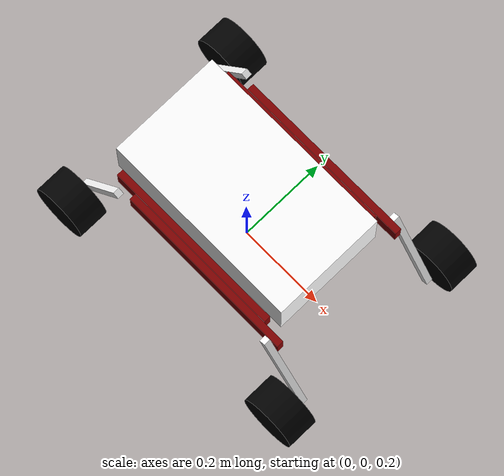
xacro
<?xml version="1.0"?>
<robot xmlns:xacro="http://www.ros.org/wiki/xacro" >

    <xacro:include filename="inertial_macros.xacro"/>

    <xacro:property name="chassis_length" value="0.45"/>
    <xacro:property name="chassis_width" value="0.255"/>
    <xacro:property name="chassis_height" value="0.12"/>

    <xacro:property name="arm_length" value="0.4064"/>
    <xacro:property name="arm_width" value="0.015"/>
    <xacro:property name="arm_height" value="0.045"/>
    <xacro:property name="arm_offset" value="0.1425"/>
    <xacro:property name="arm_outer_offset" value="0.052"/>

    <xacro:property name="leg_length" value="0.225"/>
    <xacro:property name="leg_width" value="0.015"/>
    <xacro:property name="leg_height" value="0.015"/>

    <xacro:property name="wheel_radius" value="0.0635"/>
    <xacro:property name="wheel_thickness" value="0.06985"/>
    <xacro:property name="wheel_mass" value="0.02"/>

   <xacro:property name="wheel_offset_y" value="0.2667"/>
   <xacro:property name="wheel_offset_x" value="0.27305"/>

   <xacro:property name="rotation_limit" value="${pi/6}"/>

    <material name="white">
        <color rgba="1 1 1 1" />
    </material>

    <material name="black">
        <color rgba="0 0 0 1"/>
    </material>

    <material name="red">
        <color rgba=".5 0 0 1"/>
    </material>

    <!-- BASE LINK -->

    <link name="base_link">

    </link>

    <!-- BASE FOOTPRINT-->

    <joint name="base_footprint_joint" type="fixed">
        <parent link="base_link"/>
        <child link="base_footprint"/>
        <origin xyz="0 0 0" rpy="0 0 0"/>
    </joint>

    <link name="base_footprint">
    </link>

    <!-- CHASSIS LINK -->

    <joint name="chassis_joint" type="fixed">
        <parent link="base_link"/>
        <child link="chassis"/>
        <origin xyz="0 0 .5"/>
    </joint>

    <link name="chassis">
        <visual>
            <origin xyz="0 0 0"/>
            <geometry>
                <box size="${chassis_length} ${chassis_width} ${chassis_height}"/>
            </geometry>
            <material name="white"/>
        </visual>
        <collision>
            <origin xyz="0 0 0"/>
            <geometry>
                <box size="${chassis_length} ${chassis_width} ${chassis_height}"/>
            </geometry>
        </collision>
        <xacro:inertial_box mass="0.5" x="${chassis_length}" y="${chassis_width}" z="${chassis_height}">
            <origin xyz="0 0 0" rpy="0 0 0"/>
        </xacro:inertial_box>
    </link>

    <!-- INNER RIGHT ARM-->

    <joint name="right_arm_inner_joint" type="revolute">
        <parent link="chassis"/>
        <child link="right_arm_inner"/>
        <origin xyz="0 -${arm_offset} -0.038"/>
        <axis xyz="0 1 0"/>
        <limit effort="100" velocity="5.0" lower="-${rotation_limit}" upper="${rotation_limit}" />
        <dynamics damping="1" friction="0.25"/>
    </joint>

    <link name="right_arm_inner">
        <visual>
            <origin xyz="0 0 0"/>
            <geometry>
                <box size="${arm_length} ${arm_width} ${arm_height}"/>
            </geometry>
            <material name="red"/>
        </visual>
        <collision>
            <origin xyz="0 0 0"/>
            <geometry>
                <box size="${arm_length} ${arm_width} ${arm_height}"/>
            </geometry>
        </collision>
        <xacro:inertial_box mass="0.2" x="${arm_length}" y="${arm_width}" z="${arm_height}">
            <origin xyz="${arm_length/2} 0 ${arm_height/2}" rpy="0 0 0"/>
        </xacro:inertial_box>
    </link>

    <!-- INNER LEFT ARM-->

    <joint name="left_arm_inner_joint" type="revolute">
        <parent link="chassis"/>
        <child link="left_arm_inner"/>
        <origin xyz="0 ${arm_offset} -0.038"/>
        <axis xyz="0 1 0"/>
        <limit effort="100" velocity="5.0" lower="-${rotation_limit}" upper="${rotation_limit}"/>
        <mimic joint="right_arm_inner_joint" multiplier="-1.0"/>
    </joint>

    <link name="left_arm_inner">
        <visual>
            <origin xyz="0 0 0"/>
            <geometry>
                <box size="${arm_length} ${arm_width} ${arm_height}"/>
            </geometry>
            <material name="red"/>
        </visual>
        <collision>
            <origin xyz="0 0 0"/>
            <geometry>
                <box size="${arm_length} ${arm_width} ${arm_height}"/>
            </geometry>
        </collision>
        <xacro:inertial_box mass="0.2" x="${arm_length}" y="${arm_width}" z="${arm_height}">
            <origin xyz="${arm_length/2} 0 ${arm_height/2}" rpy="0 0 0"/>
        </xacro:inertial_box>
    </link>

    <!-- OUTER RIGHT ARM-->

    <joint name="right_arm_outer_joint" type="prismatic">
        <parent link="right_arm_inner"/>
        <child link="right_arm_outer"/>
        <origin xyz="${arm_outer_offset} -${arm_width + .001} 0"/>
        <axis xyz="1 0 0"/>
        <limit effort="100" velocity="0.01" upper="0"/>
        <dynamics damping="3" friction="0.025"/>
    </joint>

    <link name="right_arm_outer">
        <visual>
            <origin xyz="0 0 0"/>
            <geometry>
                <box size="${arm_length} ${arm_width} ${arm_height}"/>
            </geometry>
            <material name="red"/>
        </visual>
        <collision>
            <origin xyz="0 0 0"/>
            <geometry>
                <box size="${arm_length} ${arm_width} ${arm_height}"/>
            </geometry>
        </collision>
        <xacro:inertial_box mass="0.2" x="${arm_length}" y="${arm_width}" z="${arm_height}">
            <origin xyz="${arm_length/2} 0 ${arm_height/2}" rpy="0 0 0"/>
        </xacro:inertial_box>
    </link>

    <!-- OUTER LEFT ARM-->

    <joint name="left_arm_outer_joint" type="prismatic">
        <parent link="left_arm_inner"/>
        <child link="left_arm_outer"/>
        <origin xyz="${arm_outer_offset} ${arm_width + .001} 0"/>
        <axis xyz="1 0 0"/>
        <limit effort="100" velocity="0.01" upper="0"/>
        <dynamics damping="3" friction="0.025"/>
    </joint>

    <link name="left_arm_outer">
        <visual>
            <origin xyz="0 0 0"/>
            <geometry>
                <box size="${arm_length} ${arm_width} ${arm_height}"/>
            </geometry>
            <material name="red"/>
        </visual>
        <collision>
            <origin xyz="0 0 0"/>
            <geometry>
                <box size="${arm_length} ${arm_width} ${arm_height}"/>
            </geometry>
        </collision>
        <xacro:inertial_box mass="0.2" x="${arm_length}" y="${arm_width}" z="${arm_height}">
            <origin xyz="${arm_length/2} 0 ${arm_height/2}" rpy="0 0 0"/>
        </xacro:inertial_box>
    </link>

    <!-- FRONT LEFT LEG-->

    <joint name="FL_leg_joint" type="fixed">
        <parent link="left_arm_outer"/>
        <child link="FL_leg"/>
        <origin xyz=".27 ${leg_width} -0.16" rpy="0 ${1.0821 + pi} 0"/>
    </joint>

    <link name="FL_leg">
        <visual>
            <origin xyz="${leg_length/2 -.025} 0 0" />
            <geometry>
                <box size="${leg_length} ${leg_width} ${leg_height}"/>
            </geometry>
            <material name="white"/>
        </visual>
        <collision>
            <origin xyz="${leg_length/2 -.025} 0 0" />
            <geometry>
                <box size="${leg_length} ${leg_width} ${leg_height}"/>
            </geometry>
        </collision>
        <xacro:inertial_box mass="0.1" x="${leg_length}" y="${leg_width}" z="${leg_height}">
            <origin xyz="${leg_length/2 -.025} 0 0" rpy="0 0 0"/>
        </xacro:inertial_box>
    </link>

    <!-- FRONT LEFT WHEEL LINK -->

    <joint name="FL_wheel_joint" type="continuous">
        <parent link="FL_leg"/>
        <child link="FL_wheel"/>
        <origin xyz="0 ${leg_width + wheel_thickness/2} 0" rpy="-${pi/2} 0 0" />
        <axis xyz="0 0 1"/>
    </joint>

    <link name="FL_wheel">
        <visual>
            <geometry>
                <cylinder radius="${wheel_radius}" length="${wheel_thickness}"/>
            </geometry>
            <material name="black"/>
        </visual>
        <collision>
            <geometry>
                <sphere radius="${wheel_radius}"/>
            </geometry>
        </collision>
        <xacro:inertial_cylinder mass="${wheel_mass}" length="${wheel_thickness}" radius="${wheel_radius}">
            <origin xyz="0 0 0" rpy="0 0 0"/>
        </xacro:inertial_cylinder>
    </link>

    <!-- FRONT RIGHT LEG -->

    <joint name="FR_leg_joint" type="fixed">
        <parent link="right_arm_outer"/>
        <child link="FR_leg"/>
        <origin xyz=".27 -${leg_width} -0.16" rpy="0 ${1.0821 + pi} 0"/>
    </joint>

    <link name="FR_leg">
        <visual>
            <origin xyz="${leg_length/2 -.025} 0 0" />
            <geometry>
                <box size="${leg_length} ${leg_width} ${leg_height}"/>
            </geometry>
            <material name="white"/>
        </visual>
        <collision>
            <origin xyz="${leg_length/2 -.025} 0 0"/>
            <geometry>
                <box size="${leg_length} ${leg_width} ${leg_height}"/>
            </geometry>
        </collision>
        <xacro:inertial_box mass="0.1" x="${leg_length}" y="${leg_width}" z="${leg_height}">
            <origin xyz="${leg_length/2 -.025} 0 0" rpy="0 0 0"/>
        </xacro:inertial_box>
    </link>

    <!-- FRONT RIGHT WHEEL LINK -->

    <joint name="FR_wheel_joint" type="continuous">
        <parent link="FR_leg"/>
        <child link="FR_wheel"/>
        <origin xyz="0 -${leg_width + wheel_thickness/2} 0" rpy="-${pi/2} 0 0" />
        <axis xyz="0 0 1"/>
    </joint>

    <link name="FR_wheel">
        <visual>
            <geometry>
                <cylinder radius="${wheel_radius}" length="${wheel_thickness}"/>
            </geometry>
            <material name="black"/>
        </visual>
        <collision>
            <geometry>
                <sphere radius="${wheel_radius}"/>
            </geometry>
        </collision>
        <xacro:inertial_cylinder mass="${wheel_mass}" length="${wheel_thickness}" radius="${wheel_radius}">
            <origin xyz="0 0 0" rpy="0 0 0"/>
        </xacro:inertial_cylinder>
    </link>

    <!-- BACK LEFT LEG-->

    <joint name="BL_leg_joint" type="fixed">
        <parent link="left_arm_inner"/>
        <child link="BL_leg"/>
        <origin xyz="-.27 ${leg_width + arm_width} -0.16" rpy="0 ${2.059489 + pi} 0"/>
    </joint>

    <link name="BL_leg">
        <visual>
            <origin xyz="${leg_length/2 -.025} 0 0" />
            <geometry>
                <box size="${leg_length} ${leg_width} ${leg_height}"/>
            </geometry>
            <material name="white"/>
        </visual>
        <collision>
            <origin xyz="${leg_length/2 -.025} 0 0" />
            <geometry>
                <box size="${leg_length} ${leg_width} ${leg_height}"/>
            </geometry>
        </collision>
        <xacro:inertial_box mass="0.1" x="${leg_length}" y="${leg_width}" z="${leg_height}">
            <origin xyz="${leg_length/2 -.025} 0 0" />
        </xacro:inertial_box>
    </link>

    <!-- BACK LEFT WHEEL LINK -->

    <joint name="BL_wheel_joint" type="continuous">
        <parent link="BL_leg"/>
        <child link="BL_wheel"/>
        <origin xyz="0 ${leg_width + wheel_thickness/2} 0" rpy="-${pi/2} 0 0" />
        <axis xyz="0 0 1"/>
    </joint>

    <link name="BL_wheel">
        <visual>
            <geometry>
                <cylinder radius="${wheel_radius}" length="${wheel_thickness}"/>
            </geometry>
            <material name="black"/>
        </visual>
        <collision>
            <geometry>
                <sphere radius="${wheel_radius}"/>
            </geometry>
        </collision>
        <xacro:inertial_cylinder mass="${wheel_mass}" length="${wheel_thickness}" radius="${wheel_radius}">
            <origin xyz="0 0 0" rpy="0 0 0"/>
        </xacro:inertial_cylinder>
    </link>

    <!-- BACK RIGHT LEG-->

    <joint name="BR_leg_joint" type="fixed">
        <parent link="right_arm_inner"/>
        <child link="BR_leg"/>
        <origin xyz="-.27 -${leg_width + arm_width} -0.16" rpy="0 ${2.059489 + pi} 0"/>
    </joint>

    <link name="BR_leg">
        <visual>
            <origin xyz="${leg_length/2 -.025} 0 0" />
            <geometry>
                <box size="${leg_length} ${leg_width} ${leg_height}"/>
            </geometry>
            <material name="white"/>
        </visual>
        <collision>
            <origin xyz="${leg_length/2 -.025} 0 0" />
            <geometry>
                <box size="${leg_length} ${leg_width} ${leg_height}"/>
            </geometry>
        </collision>
        <xacro:inertial_box mass="0.1" x="${leg_length}" y="${leg_width}" z="${leg_height}">
            <origin xyz="${leg_length/2 -.025} 0 0" />
        </xacro:inertial_box>
    </link>

    <!-- BACK RIGHT WHEEL LINK -->

    <joint name="BR_wheel_joint" type="continuous">
        <parent link="BR_leg"/>
        <child link="BR_wheel"/>
        <origin xyz="0 -${leg_width + wheel_thickness/2} 0" rpy="-${pi/2} 0 0" />
        <axis xyz="0 0 1"/>
    </joint>

    <link name="BR_wheel">
        <visual>
            <geometry>
                <cylinder radius="${wheel_radius}" length="${wheel_thickness}"/>
            </geometry>
            <material name="black"/>
        </visual>
        <collision>
            <geometry>
                <sphere radius="${wheel_radius}"/>
            </geometry>
        </collision>
        <xacro:inertial_cylinder mass="${wheel_mass}" length="${wheel_thickness}" radius="${wheel_radius}">
            <origin xyz="0 0 0" rpy="0 0 0"/>
        </xacro:inertial_cylinder>
    </link>

    <gazebo>
        <plugin name="joint_states" filename="libgazebo_ros_joint_state_publisher.so">
            <ros>
                <remapping>~/out:=joint_states</remapping>
            </ros>
            <update_rate>30</update_rate>
            <joint_name>right_arm_inner_joint</joint_name>
            <joint_name>right_arm_outer_joint</joint_name>
            <joint_name>left_arm_inner_joint</joint_name>
            <joint_name>left_arm_outer_joint</joint_name>

            <joint_name>BL_wheel_joint</joint_name>
            <joint_name>BR_wheel_joint</joint_name>
            <joint_name>FL_wheel_joint</joint_name>
            <joint_name>FR_wheel_joint</joint_name>

        </plugin>

    </gazebo>

    <!-- Gazebo Colors-->
    <gazebo reference="FR_wheel">
        <material>Gazebo/Black</material>
        <mu1 value="0.001"/>
        <mu2 value="0.001"/>
    </gazebo>
    <gazebo reference="BR_wheel">
        <material>Gazebo/Black</material>
    </gazebo>
    <gazebo reference="FL_wheel">
        <material>Gazebo/Black</material>
        <mu1 value="0.001"/>
        <mu2 value="0.001"/>
    </gazebo>
    <gazebo reference="BL_wheel">
        <material>Gazebo/Black</material>
    </gazebo>

</robot>
